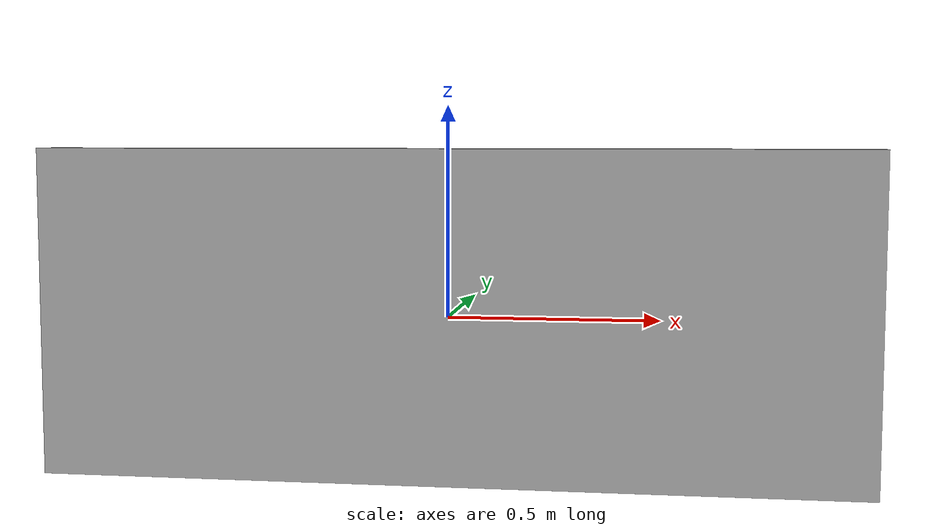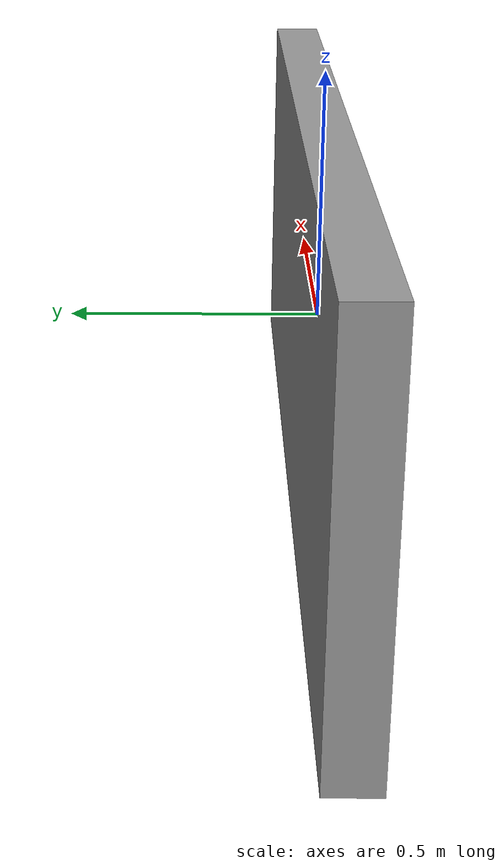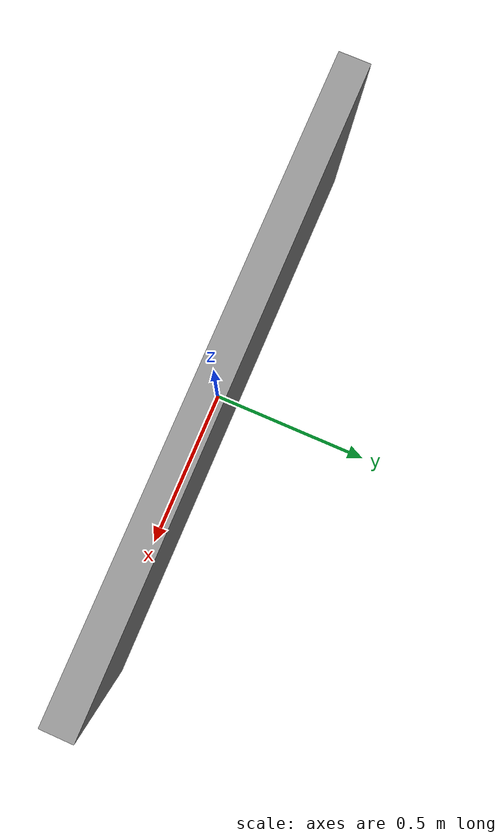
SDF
<?xml version="1.0"?>
<sdf version="1.6">
  <model name="obstacle_wall">
    <static>true</static>
    <link name="link">
      <collision name="collision">
        <geometry><box><size>2.00 0.10 0.80</size></box></geometry>
        <surface>
          <friction><ode><mu>0.9</mu><mu2>0.9</mu2></ode></friction>
          <contact><ode/></contact>
        </surface>
      </collision>
      <visual name="visual">
        <geometry><box><size>2.00 0.10 0.80</size></box></geometry>
        <material>
          <ambient>0.60 0.60 0.60 1</ambient>
          <diffuse>0.60 0.60 0.60 1</diffuse>
          <specular>0.05 0.05 0.05 1</specular>
        </material>
      </visual>
    </link>
  </model>
</sdf>
